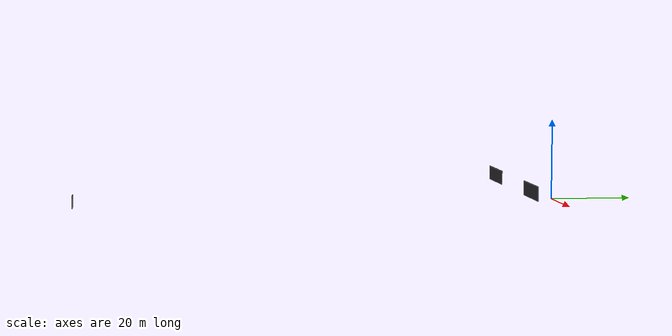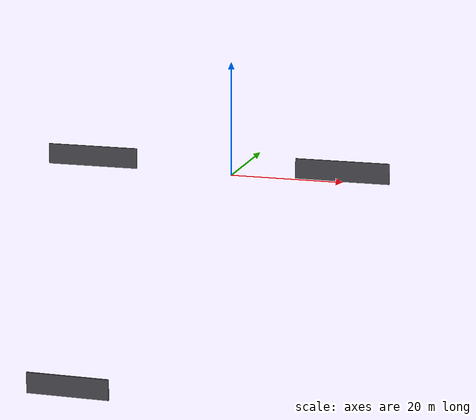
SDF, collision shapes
<?xml version="1.0"?>
<sdf version="1.9">
  <model name="aero_sense_zone_signs">
    <static>true</static>
    <link name="link">
      <visual name="board_earthquake">
        <pose>-22 -10 4.25 0 0 0</pose>
        <cast_shadows>false</cast_shadows>
        <geometry><mesh><uri>model://aero_sense_zone_signs/meshes/board_earthquake.glb</uri></mesh></geometry>
      </visual>
      <collision name="board_earthquake_collision">
        <pose>-22 -10 4.25 0 0 0</pose>
        <geometry><box><size>16 0.25 3.5</size></box></geometry>
      </collision>
      <visual name="post_earthquake_l">
        <pose>-28.5 -9.7 3.0 0 0 0</pose>
        <cast_shadows>false</cast_shadows>
        <geometry><cylinder><radius>0.15</radius><length>6.0</length></cylinder></geometry>
        <material><ambient>0.25 0.25 0.27 1</ambient><diffuse>0.25 0.25 0.27 1</diffuse></material>
      </visual>
      <visual name="post_earthquake_r">
        <pose>-15.5 -9.7 3.0 0 0 0</pose>
        <cast_shadows>false</cast_shadows>
        <geometry><cylinder><radius>0.15</radius><length>6.0</length></cylinder></geometry>
        <material><ambient>0.25 0.25 0.27 1</ambient><diffuse>0.25 0.25 0.27 1</diffuse></material>
      </visual>
      <visual name="board_flood">
        <pose>22 -10 4.25 0 0 0</pose>
        <cast_shadows>false</cast_shadows>
        <geometry><mesh><uri>model://aero_sense_zone_signs/meshes/board_flood.glb</uri></mesh></geometry>
      </visual>
      <collision name="board_flood_collision">
        <pose>22 -10 4.25 0 0 0</pose>
        <geometry><box><size>16 0.25 3.5</size></box></geometry>
      </collision>
      <visual name="post_flood_l">
        <pose>15.5 -9.7 3.0 0 0 0</pose>
        <cast_shadows>false</cast_shadows>
        <geometry><cylinder><radius>0.15</radius><length>6.0</length></cylinder></geometry>
        <material><ambient>0.25 0.25 0.27 1</ambient><diffuse>0.25 0.25 0.27 1</diffuse></material>
      </visual>
      <visual name="post_flood_r">
        <pose>28.5 -9.7 3.0 0 0 0</pose>
        <cast_shadows>false</cast_shadows>
        <geometry><cylinder><radius>0.15</radius><length>6.0</length></cylinder></geometry>
        <material><ambient>0.25 0.25 0.27 1</ambient><diffuse>0.25 0.25 0.27 1</diffuse></material>
      </visual>
      <visual name="board_base">
        <pose>14 -119.5 2.25 0 0 0</pose>
        <cast_shadows>false</cast_shadows>
        <geometry><mesh><uri>model://aero_sense_zone_signs/meshes/board_base.glb</uri></mesh></geometry>
      </visual>
      <collision name="board_base_collision">
        <pose>14 -119.5 2.25 0 0 0</pose>
        <geometry><box><size>10 0.25 2.5</size></box></geometry>
      </collision>
      <visual name="post_base_l">
        <pose>10.5 -119.2 1.75 0 0 0</pose>
        <cast_shadows>false</cast_shadows>
        <geometry><cylinder><radius>0.15</radius><length>3.5</length></cylinder></geometry>
        <material><ambient>0.25 0.25 0.27 1</ambient><diffuse>0.25 0.25 0.27 1</diffuse></material>
      </visual>
      <visual name="post_base_r">
        <pose>17.5 -119.2 1.75 0 0 0</pose>
        <cast_shadows>false</cast_shadows>
        <geometry><cylinder><radius>0.15</radius><length>3.5</length></cylinder></geometry>
        <material><ambient>0.25 0.25 0.27 1</ambient><diffuse>0.25 0.25 0.27 1</diffuse></material>
      </visual>
      <visual name="ground_earthquake">
        <pose>-100 -18 0.012 0 0 0</pose>
        <cast_shadows>false</cast_shadows>
        <geometry><mesh><uri>model://aero_sense_zone_signs/meshes/ground_earthquake.glb</uri></mesh></geometry>
      </visual>
      <visual name="ground_flood">
        <pose>100 -18 0.012 0 0 0</pose>
        <cast_shadows>false</cast_shadows>
        <geometry><mesh><uri>model://aero_sense_zone_signs/meshes/ground_flood.glb</uri></mesh></geometry>
      </visual>
      <visual name="ground_base">
        <pose>28 -104 0.012 0 0 0</pose>
        <cast_shadows>false</cast_shadows>
        <geometry><mesh><uri>model://aero_sense_zone_signs/meshes/ground_base.glb</uri></mesh></geometry>
      </visual>
      <visual name="outline_earthquake_south">
        <pose>-100.0 10.0 0.04 0 0 0</pose>
        <cast_shadows>false</cast_shadows>
        <geometry><box><size>160.6 0.6 0.01</size></box></geometry>
        <material><ambient>0.98 0.85 0.1 1</ambient><diffuse>0.98 0.85 0.1 1</diffuse></material>
      </visual>
      <visual name="outline_earthquake_north">
        <pose>-100.0 92.0 0.04 0 0 0</pose>
        <cast_shadows>false</cast_shadows>
        <geometry><box><size>160.6 0.6 0.01</size></box></geometry>
        <material><ambient>0.98 0.85 0.1 1</ambient><diffuse>0.98 0.85 0.1 1</diffuse></material>
      </visual>
      <visual name="outline_earthquake_west">
        <pose>-180.0 51.0 0.04 0 0 0</pose>
        <cast_shadows>false</cast_shadows>
        <geometry><box><size>0.6 82.6 0.01</size></box></geometry>
        <material><ambient>0.98 0.85 0.1 1</ambient><diffuse>0.98 0.85 0.1 1</diffuse></material>
      </visual>
      <visual name="outline_earthquake_east">
        <pose>-20.0 51.0 0.04 0 0 0</pose>
        <cast_shadows>false</cast_shadows>
        <geometry><box><size>0.6 82.6 0.01</size></box></geometry>
        <material><ambient>0.98 0.85 0.1 1</ambient><diffuse>0.98 0.85 0.1 1</diffuse></material>
      </visual>
      <visual name="no_network_north_east_blocks_south">
        <pose>-65.0 50.0 0.45 0 0 0</pose>
        <cast_shadows>false</cast_shadows>
        <geometry><box><size>90.8 0.8 0.01</size></box></geometry>
        <material><ambient>0.9 0.12 0.1 1</ambient><diffuse>0.9 0.12 0.1 1</diffuse><emissive>0.5 0.05 0.05 1</emissive></material>
      </visual>
      <visual name="no_network_north_east_blocks_north">
        <pose>-65.0 92.0 0.45 0 0 0</pose>
        <cast_shadows>false</cast_shadows>
        <geometry><box><size>90.8 0.8 0.01</size></box></geometry>
        <material><ambient>0.9 0.12 0.1 1</ambient><diffuse>0.9 0.12 0.1 1</diffuse><emissive>0.5 0.05 0.05 1</emissive></material>
      </visual>
      <visual name="no_network_north_east_blocks_west">
        <pose>-110.0 71.0 0.45 0 0 0</pose>
        <cast_shadows>false</cast_shadows>
        <geometry><box><size>0.8 42.8 0.01</size></box></geometry>
        <material><ambient>0.9 0.12 0.1 1</ambient><diffuse>0.9 0.12 0.1 1</diffuse><emissive>0.5 0.05 0.05 1</emissive></material>
      </visual>
      <visual name="no_network_north_east_blocks_east">
        <pose>-20.0 71.0 0.45 0 0 0</pose>
        <cast_shadows>false</cast_shadows>
        <geometry><box><size>0.8 42.8 0.01</size></box></geometry>
        <material><ambient>0.9 0.12 0.1 1</ambient><diffuse>0.9 0.12 0.1 1</diffuse><emissive>0.5 0.05 0.05 1</emissive></material>
      </visual>
      <visual name="no_network_north_east_blocks_label">
        <pose>-65.0 98.5 0.012 0 0 0</pose>
        <cast_shadows>false</cast_shadows>
        <geometry><mesh><uri>model://aero_sense_zone_signs/meshes/ground_no_network.glb</uri></mesh></geometry>
      </visual>
      <visual name="no_gps_north_west_blocks_south">
        <pose>-151.0 50.0 0.45 0 0 0</pose>
        <cast_shadows>false</cast_shadows>
        <geometry><box><size>58.8 0.8 0.01</size></box></geometry>
        <material><ambient>0.95 0.5 0.05 1</ambient><diffuse>0.95 0.5 0.05 1</diffuse><emissive>0.5 0.25 0.02 1</emissive></material>
      </visual>
      <visual name="no_gps_north_west_blocks_north">
        <pose>-151.0 92.0 0.45 0 0 0</pose>
        <cast_shadows>false</cast_shadows>
        <geometry><box><size>58.8 0.8 0.01</size></box></geometry>
        <material><ambient>0.95 0.5 0.05 1</ambient><diffuse>0.95 0.5 0.05 1</diffuse><emissive>0.5 0.25 0.02 1</emissive></material>
      </visual>
      <visual name="no_gps_north_west_blocks_west">
        <pose>-180.0 71.0 0.45 0 0 0</pose>
        <cast_shadows>false</cast_shadows>
        <geometry><box><size>0.8 42.8 0.01</size></box></geometry>
        <material><ambient>0.95 0.5 0.05 1</ambient><diffuse>0.95 0.5 0.05 1</diffuse><emissive>0.5 0.25 0.02 1</emissive></material>
      </visual>
      <visual name="no_gps_north_west_blocks_east">
        <pose>-122.0 71.0 0.45 0 0 0</pose>
        <cast_shadows>false</cast_shadows>
        <geometry><box><size>0.8 42.8 0.01</size></box></geometry>
        <material><ambient>0.95 0.5 0.05 1</ambient><diffuse>0.95 0.5 0.05 1</diffuse><emissive>0.5 0.25 0.02 1</emissive></material>
      </visual>
      <visual name="no_gps_north_west_blocks_label">
        <pose>-151.0 98.5 0.012 0 0 0</pose>
        <cast_shadows>false</cast_shadows>
        <geometry><mesh><uri>model://aero_sense_zone_signs/meshes/ground_no_gps.glb</uri></mesh></geometry>
      </visual>
      <visual name="no_gps_network_south_lanes_south">
        <pose>-110.0 10.0 0.45 0 0 0</pose>
        <cast_shadows>false</cast_shadows>
        <geometry><box><size>100.8 0.8 0.01</size></box></geometry>
        <material><ambient>0.55 0.2 0.8 1</ambient><diffuse>0.55 0.2 0.8 1</diffuse><emissive>0.28 0.1 0.4 1</emissive></material>
      </visual>
      <visual name="no_gps_network_south_lanes_north">
        <pose>-110.0 38.0 0.45 0 0 0</pose>
        <cast_shadows>false</cast_shadows>
        <geometry><box><size>100.8 0.8 0.01</size></box></geometry>
        <material><ambient>0.55 0.2 0.8 1</ambient><diffuse>0.55 0.2 0.8 1</diffuse><emissive>0.28 0.1 0.4 1</emissive></material>
      </visual>
      <visual name="no_gps_network_south_lanes_west">
        <pose>-160.0 24.0 0.45 0 0 0</pose>
        <cast_shadows>false</cast_shadows>
        <geometry><box><size>0.8 28.8 0.01</size></box></geometry>
        <material><ambient>0.55 0.2 0.8 1</ambient><diffuse>0.55 0.2 0.8 1</diffuse><emissive>0.28 0.1 0.4 1</emissive></material>
      </visual>
      <visual name="no_gps_network_south_lanes_east">
        <pose>-60.0 24.0 0.45 0 0 0</pose>
        <cast_shadows>false</cast_shadows>
        <geometry><box><size>0.8 28.8 0.01</size></box></geometry>
        <material><ambient>0.55 0.2 0.8 1</ambient><diffuse>0.55 0.2 0.8 1</diffuse><emissive>0.28 0.1 0.4 1</emissive></material>
      </visual>
      <!-- south of the cross street's poles (y 4-7): on the street, the leaning pole_31 hid "NETWORK" -->
      <visual name="no_gps_network_south_lanes_label">
        <pose>-110.0 -3.5 0.012 0 0 0</pose>
        <cast_shadows>false</cast_shadows>
        <geometry><mesh><uri>model://aero_sense_zone_signs/meshes/ground_no_gps_network.glb</uri></mesh></geometry>
      </visual>
      <visual name="outline_flood_south">
        <pose>100.0 20.0 0.62 0 0 0</pose>
        <cast_shadows>false</cast_shadows>
        <geometry><box><size>160.6 0.6 0.01</size></box></geometry>
        <material><ambient>0.98 0.85 0.1 1</ambient><diffuse>0.98 0.85 0.1 1</diffuse></material>
      </visual>
      <visual name="outline_flood_north">
        <pose>100.0 80.0 0.62 0 0 0</pose>
        <cast_shadows>false</cast_shadows>
        <geometry><box><size>160.6 0.6 0.01</size></box></geometry>
        <material><ambient>0.98 0.85 0.1 1</ambient><diffuse>0.98 0.85 0.1 1</diffuse></material>
      </visual>
      <visual name="outline_flood_west">
        <pose>20.0 50.0 0.62 0 0 0</pose>
        <cast_shadows>false</cast_shadows>
        <geometry><box><size>0.6 60.6 0.01</size></box></geometry>
        <material><ambient>0.98 0.85 0.1 1</ambient><diffuse>0.98 0.85 0.1 1</diffuse></material>
      </visual>
      <visual name="outline_flood_east">
        <pose>180.0 50.0 0.62 0 0 0</pose>
        <cast_shadows>false</cast_shadows>
        <geometry><box><size>0.6 60.6 0.01</size></box></geometry>
        <material><ambient>0.98 0.85 0.1 1</ambient><diffuse>0.98 0.85 0.1 1</diffuse></material>
      </visual>
    </link>
  </model>
</sdf>
